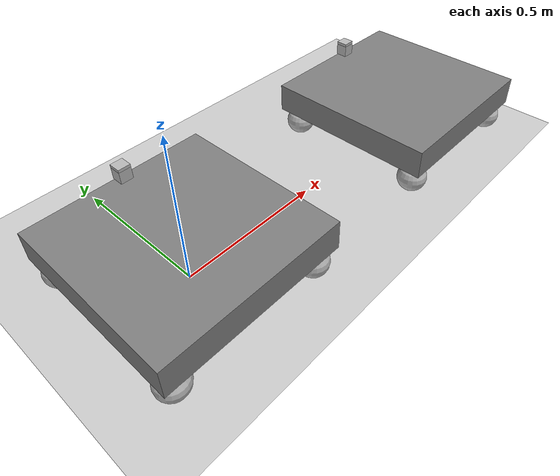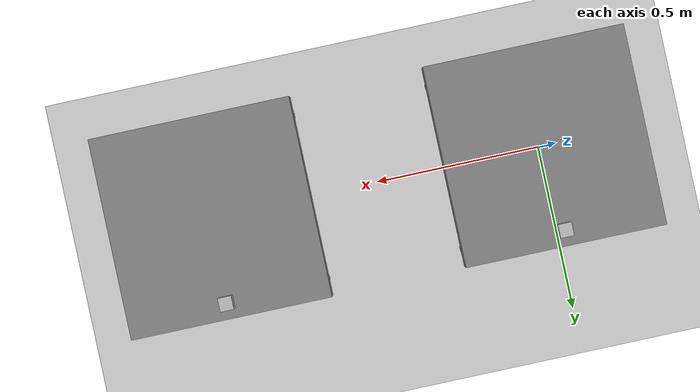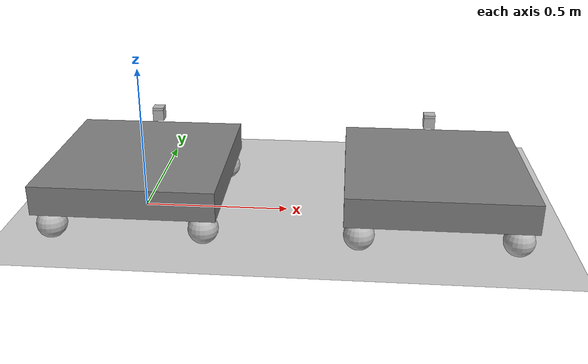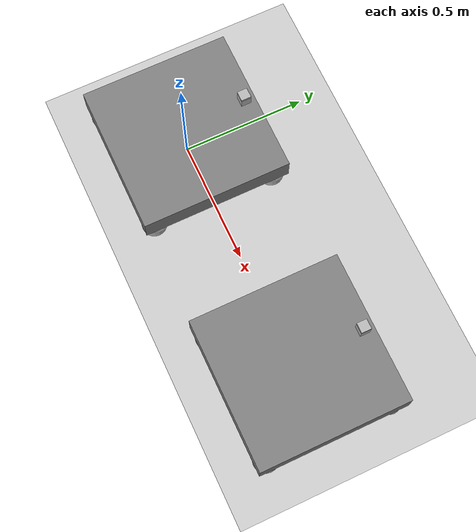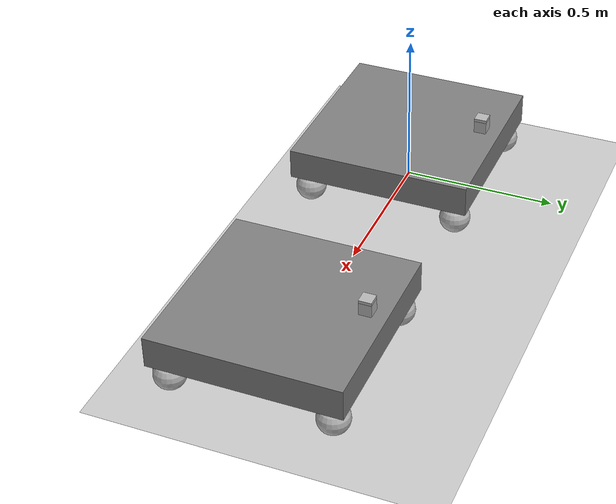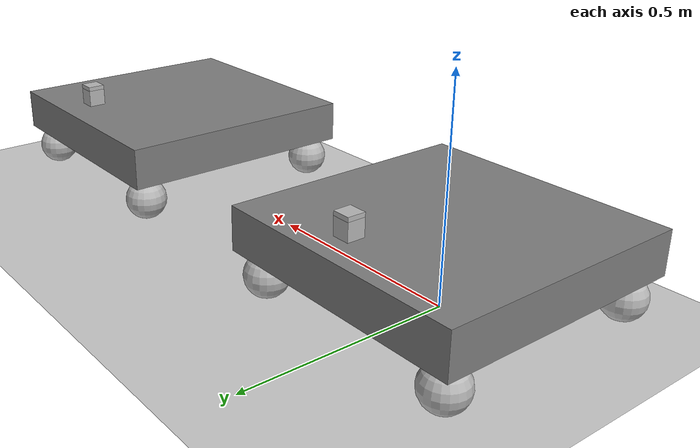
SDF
<?xml version='1.0'?>
<sdf version='1.5'>
 <world name="default">
   <include>
      <uri>model://sun</uri>
   </include>
   <include>
      <uri>model://ground_plane</uri>
   </include>

   <include>
      <uri>model://ropod</uri>
      <pose>0.0 0.0 0.0 0.0 0.0 1.5708</pose>
    </include>

    <include>
      <uri>model://ropod_2</uri>
      <pose>1.0 0.0 0.0 0.0 0.0 1.5708</pose>
    </include>

 </world>
</sdf>

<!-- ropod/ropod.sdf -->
<sdf version='1.5'>

  <model name='ropod'>

   <link name='base_link'>

      <inertial>
        <mass>0.01</mass>
        <inertia> <!-- inertias are tricky to compute -->
          <!-- http://gazebosim.org/tutorials?tut=inertia&cat=build_robot -->
          <ixx>0.083*00.0*1.01</ixx>       <!-- for a box: ixx = 0.083 * mass * (y*y + z*z) -->
          <ixy>0.0</ixy>         <!-- for a box: ixy = 0 -->
          <ixz>0.0</ixz>         <!-- for a box: ixz = 0 -->
          <iyy>0.083*00.01*1.01</iyy>       <!-- for a box: iyy = 0.083 * mass * (x*x + z*z) -->
          <iyz>0.0</iyz>         <!-- for a box: iyz = 0 -->
          <izz>0.083*00.01*2</izz>       <!-- for a box: izz = 0.083 * mass * (x*x + y*y) -->
        </inertia>
      </inertial>

      <collision name='base_link_collision'>
        <pose>0 0 0.15 0 0 0</pose>
        <geometry>
          <box>
            <size>0.6 0.6 0.1</size>
          </box>
        </geometry>
      </collision>
      <visual name='base_link_visual'>
        <pose>0 0 0.15 0 0 0</pose>
        <geometry>
          <box>
            <size>0.6 0.6 0.1</size>
          </box>
        </geometry>
	<material>
		<ambient>0.5 0.5 0.5 1</ambient>
		<diffuse>0.5 0.5 0.5 1</diffuse>
		<specular>0.1 0.1 0.1 1</specular>
		<emissive>0 0 0 0</emissive>
	</material>
      </visual>

      <collision name='base_link_collision_left_rear_wheel'>
        <pose>-0.25 0.25 0.05 0 -0 0</pose>
        <geometry>
          <sphere>
            <radius>0.05</radius>
          </sphere>
        </geometry>
        <surface>
          <contact>
            <ode>
              <kp>1e+09</kp>
              <kd>1</kd>
            </ode>
          </contact>
          <friction>
            <ode>
              <mu>0.1</mu>
              <mu2>0.1</mu2>
            </ode>
          </friction>
        </surface>
      </collision>
      <visual name='base_link_visual_left_rear_wheel'>
         <pose>-0.25 0.25 0.05 0 -0 0</pose>
        <geometry>
          <sphere>
            <radius>0.05</radius>
          </sphere>
        </geometry>
      </visual>

      <collision name='base_link_collision_left_top_wheel'>
        <pose>0.25 0.25 0.05 0 -0 0</pose>
        <geometry>
          <sphere>
            <radius>0.05</radius>
          </sphere>
        </geometry>
        <surface>
          <contact>
            <ode>
              <kp>1e+09</kp>
              <kd>1</kd>
            </ode>
          </contact>
          <friction>
            <ode>
              <mu>0.1</mu>
              <mu2>0.1</mu2>
            </ode>
          </friction>
        </surface>
      </collision>
      <visual name='base_link_visual_left_top_wheel'>
         <pose>0.25 0.25 0.05 0 -0 0</pose>
        <geometry>
          <sphere>
            <radius>0.05</radius>
          </sphere>
        </geometry>
      </visual>

      <collision name='base_link_collision_right_top_wheel'>
        <pose>0.25 -0.25 0.05 0 -0 0</pose>
        <geometry>
          <sphere>
            <radius>0.05</radius>
          </sphere>
        </geometry>
        <surface>
          <contact>
            <ode>
              <kp>1e+09</kp>
              <kd>1</kd>
            </ode>
          </contact>
          <friction>
            <ode>
              <mu>0.1</mu>
              <mu2>0.1</mu2>
            </ode>
          </friction>
        </surface>
      </collision>
      <visual name='base_link_visual_right_top_wheel'>
         <pose>0.25 -0.25 0.05 0 -0 0</pose>
        <geometry>
          <sphere>
            <radius>0.05</radius>
          </sphere>
        </geometry>
      </visual>

      <collision name='base_link_collision_right_rear_wheel'>
        <pose>-0.25 -0.25 0.05 0 -0 0</pose>
        <geometry>
          <sphere>
            <radius>0.05</radius>
          </sphere>
        </geometry>
        <surface>
          <contact>
            <ode>
              <kp>1e+09</kp>
              <kd>1</kd>
            </ode>
          </contact>
          <friction>
            <ode>
              <mu>0.1</mu>
              <mu2>0.1</mu2>
            </ode>
          </friction>
        </surface>
      </collision>
      <visual name='base_link_visual_right_rear_wheel'>
         <pose>-0.25 -0.25 0.05 0 -0 0</pose>
        <geometry>
          <sphere>
            <radius>0.05</radius>
          </sphere>
        </geometry>
      </visual>

    <!-- ********************** laser front ***************************** -->

      <visual name='base_link_visual_laser'>
        <pose>0.25 0 0.25 0 -0 0</pose>
        <geometry>
          <box>
            <size>0.04 0.04 0.04</size>
          </box>
        </geometry>
      </visual>
      <visual name='base_link_visual_lasertop'>
        <pose>0.25 0 0.275 0 -0 0</pose>
        <geometry>
          <box>
            <size>0.04 0.04 0.01</size>
          </box>
        </geometry>
      </visual>

      <sensor name='laser' type='ray'>
        <pose>0.25 0 0.25 0 0 0</pose>
        <ray>
          <scan>
            <horizontal>
              <samples>500</samples>
              <resolution>1</resolution>
              <min_angle>-2.35</min_angle>
              <max_angle>2.35</max_angle>
            </horizontal>
            <vertical>
              <samples>1</samples>
              <resolution>1</resolution>
              <min_angle>0</min_angle>
              <max_angle>0</max_angle>
            </vertical>
          </scan>
          <range>
            <min>0.01</min>
            <max>4</max>
            <resolution>0.01</resolution>
          </range>
        </ray>

        <plugin name="gazebo_ros_laser" filename="libgazebo_ros_laser.so">
          <topicName>/ropod/laser_sim</topicName>
          <frameName>/ropod/laser/scan</frameName>
          <robotNamespace></robotNamespace>
          <gaussianNoise>0.01</gaussianNoise>
          <always_on>1</always_on>
          <updateRate>30.0</updateRate>
        </plugin>
        <visualize>1</visualize>
      </sensor>

    <!-- ********************** laser back ***************************** -->

    <!-- ********************** bumper ***************************** -->
    <sensor type="contact" name="gazebo_base_bumper">
        <update_rate>100.0</update_rate>
        <always_on>1</always_on>
        <contact>
            <collision>base_link_collision</collision>
            <topic>bumper_contact</topic>
        </contact>
        <plugin name="gazebo_ros_bumper_controller" filename="libgazebo_ros_bumper.so">
            <alwaysOn>true</alwaysOn>
            <updateRate>100.0</updateRate>
            <bumperTopicName>/ropod/bumper</bumperTopicName>
            <frameName>world</frameName>
        </plugin>
    </sensor>

<!-- ********************** Other parameters ***************************** -->
      <gravity>1</gravity>
      <velocity_decay>
        <linear>0</linear>
        <angular>0</angular>
      </velocity_decay>
      <self_collide>0</self_collide>

   </link>

   <plugin name="Controller_Plugin" filename="libgazebo_ros_planar_move.so">
       <odometryRate>30.0</odometryRate>
       <commandTopic>cmd_vel</commandTopic>
       <odometryTopic>odom_incomplete</odometryTopic>
       <robotBaseFrame>base_link</robotBaseFrame>
       <odometryFrame>/ropod/odom_incomplete</odometryFrame>
       <robotNamespace>ropod</robotNamespace>
   </plugin>

  </model>

  </sdf>

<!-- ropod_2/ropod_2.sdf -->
<sdf version='1.5'>

  <model name='ropod_2'>

   <link name='base_link'>

      <inertial>
        <mass>0.01</mass>
        <inertia> <!-- inertias are tricky to compute -->
          <!-- http://gazebosim.org/tutorials?tut=inertia&cat=build_robot -->
          <ixx>0.083*00.0*1.01</ixx>       <!-- for a box: ixx = 0.083 * mass * (y*y + z*z) -->
          <ixy>0.0</ixy>         <!-- for a box: ixy = 0 -->
          <ixz>0.0</ixz>         <!-- for a box: ixz = 0 -->
          <iyy>0.083*00.01*1.01</iyy>       <!-- for a box: iyy = 0.083 * mass * (x*x + z*z) -->
          <iyz>0.0</iyz>         <!-- for a box: iyz = 0 -->
          <izz>0.083*00.01*2</izz>       <!-- for a box: izz = 0.083 * mass * (x*x + y*y) -->
        </inertia>
      </inertial>

      <collision name='base_link_collision'>
        <pose>0 0 0.15 0 0 0</pose>
        <geometry>
          <box>
            <size>0.6 0.6 0.1</size>
          </box>
        </geometry>
      </collision>
      <visual name='base_link_visual'>
        <pose>0 0 0.15 0 0 0</pose>
        <geometry>
          <box>
            <size>0.6 0.6 0.1</size>
          </box>
        </geometry>
	<material>
		<ambient>0.5 0.5 0.5 1</ambient>
		<diffuse>0.5 0.5 0.5 1</diffuse>
		<specular>0.1 0.1 0.1 1</specular>
		<emissive>0 0 0 0</emissive>
	</material>
      </visual>

      <collision name='base_link_collision_left_rear_wheel'>
        <pose>-0.25 0.25 0.05 0 -0 0</pose>
        <geometry>
          <sphere>
            <radius>0.05</radius>
          </sphere>
        </geometry>
        <surface>
          <contact>
            <ode>
              <kp>1e+09</kp>
              <kd>1</kd>
            </ode>
          </contact>
          <friction>
            <ode>
              <mu>0.1</mu>
              <mu2>0.1</mu2>
            </ode>
          </friction>
        </surface>
      </collision>
      <visual name='base_link_visual_left_rear_wheel'>
         <pose>-0.25 0.25 0.05 0 -0 0</pose>
        <geometry>
          <sphere>
            <radius>0.05</radius>
          </sphere>
        </geometry>
      </visual>

      <collision name='base_link_collision_left_top_wheel'>
        <pose>0.25 0.25 0.05 0 -0 0</pose>
        <geometry>
          <sphere>
            <radius>0.05</radius>
          </sphere>
        </geometry>
        <surface>
          <contact>
            <ode>
              <kp>1e+09</kp>
              <kd>1</kd>
            </ode>
          </contact>
          <friction>
            <ode>
              <mu>0.1</mu>
              <mu2>0.1</mu2>
            </ode>
          </friction>
        </surface>
      </collision>
      <visual name='base_link_visual_left_top_wheel'>
         <pose>0.25 0.25 0.05 0 -0 0</pose>
        <geometry>
          <sphere>
            <radius>0.05</radius>
          </sphere>
        </geometry>
      </visual>

      <collision name='base_link_collision_right_top_wheel'>
        <pose>0.25 -0.25 0.05 0 -0 0</pose>
        <geometry>
          <sphere>
            <radius>0.05</radius>
          </sphere>
        </geometry>
        <surface>
          <contact>
            <ode>
              <kp>1e+09</kp>
              <kd>1</kd>
            </ode>
          </contact>
          <friction>
            <ode>
              <mu>0.1</mu>
              <mu2>0.1</mu2>
            </ode>
          </friction>
        </surface>
      </collision>
      <visual name='base_link_visual_right_top_wheel'>
         <pose>0.25 -0.25 0.05 0 -0 0</pose>
        <geometry>
          <sphere>
            <radius>0.05</radius>
          </sphere>
        </geometry>
      </visual>

      <collision name='base_link_collision_right_rear_wheel'>
        <pose>-0.25 -0.25 0.05 0 -0 0</pose>
        <geometry>
          <sphere>
            <radius>0.05</radius>
          </sphere>
        </geometry>
        <surface>
          <contact>
            <ode>
              <kp>1e+09</kp>
              <kd>1</kd>
            </ode>
          </contact>
          <friction>
            <ode>
              <mu>0.1</mu>
              <mu2>0.1</mu2>
            </ode>
          </friction>
        </surface>
      </collision>
      <visual name='base_link_visual_right_rear_wheel'>
         <pose>-0.25 -0.25 0.05 0 -0 0</pose>
        <geometry>
          <sphere>
            <radius>0.05</radius>
          </sphere>
        </geometry>
      </visual>

    <!-- ********************** laser front ***************************** -->

      <visual name='base_link_visual_laser'>
        <pose>0.25 0 0.25 0 -0 0</pose>
        <geometry>
          <box>
            <size>0.04 0.04 0.04</size>
          </box>
        </geometry>
      </visual>
      <visual name='base_link_visual_lasertop'>
        <pose>0.25 0 0.275 0 -0 0</pose>
        <geometry>
          <box>
            <size>0.04 0.04 0.01</size>
          </box>
        </geometry>
      </visual>

      <sensor name='laser' type='ray'>
        <pose>0.25 0 0.25 0 0 0</pose>
        <ray>
          <scan>
            <horizontal>
              <samples>500</samples>
              <resolution>1</resolution>
              <min_angle>-2.35</min_angle>
              <max_angle>2.35</max_angle>
            </horizontal>
            <vertical>
              <samples>1</samples>
              <resolution>1</resolution>
              <min_angle>0</min_angle>
              <max_angle>0</max_angle>
            </vertical>
          </scan>
          <range>
            <min>0.01</min>
            <max>4</max>
            <resolution>0.01</resolution>
          </range>
        </ray>

        <plugin name="gazebo_ros_laser" filename="libgazebo_ros_laser.so">
          <topicName>/ropod_2/laser_sim</topicName>
          <frameName>/ropod_2/laser/scan</frameName>
          <robotNamespace></robotNamespace>
          <gaussianNoise>0.01</gaussianNoise>
          <always_on>1</always_on>
          <updateRate>30.0</updateRate>
        </plugin>
        <visualize>1</visualize>
      </sensor>

    <!-- ********************** laser back ***************************** -->

    <!-- ********************** bumper ***************************** -->
    <sensor type="contact" name="gazebo_base_bumper">
        <update_rate>100.0</update_rate>
        <always_on>1</always_on>
        <contact>
            <collision>base_link_collision</collision>
            <topic>bumper_contact</topic>
        </contact>
        <plugin name="gazebo_ros_bumper_controller" filename="libgazebo_ros_bumper.so">
            <alwaysOn>true</alwaysOn>
            <updateRate>100.0</updateRate>
            <bumperTopicName>/ropod/bumper</bumperTopicName>
            <frameName>world</frameName>
        </plugin>
    </sensor>

<!-- ********************** Other parameters ***************************** -->
      <gravity>1</gravity>
      <velocity_decay>
        <linear>0</linear>
        <angular>0</angular>
      </velocity_decay>
      <self_collide>0</self_collide>

   </link>

   <plugin name="Controller_Plugin" filename="libgazebo_ros_planar_move.so">
       <odometryRate>30.0</odometryRate>
       <commandTopic>ropod_2/cmd_vel</commandTopic>
       <odometryTopic>ropod_2/odom_incomplete</odometryTopic>
       <robotBaseFrame>ropod_2/base_link</robotBaseFrame>
       <odometryFrame>ropod_2/odom_incomplete</odometryFrame>
   </plugin>

  </model>

  </sdf>
